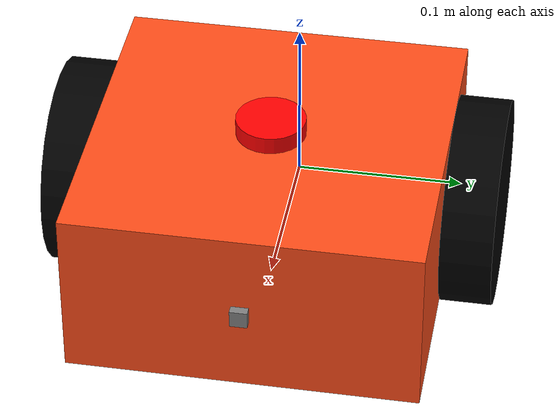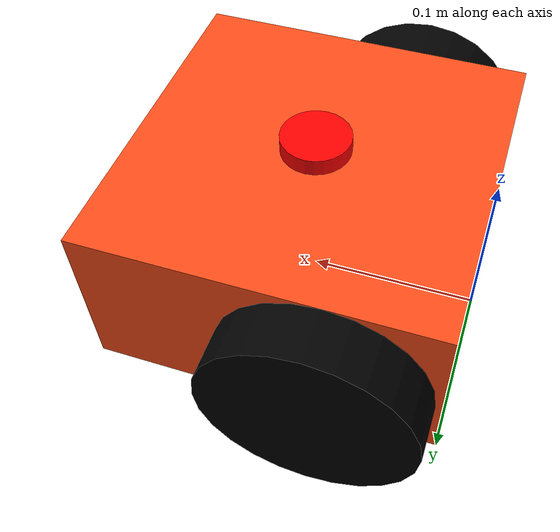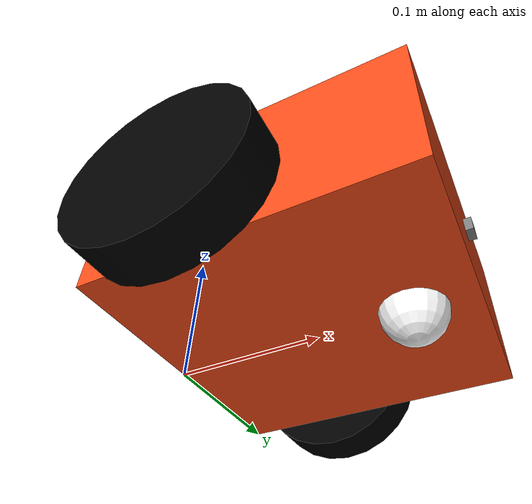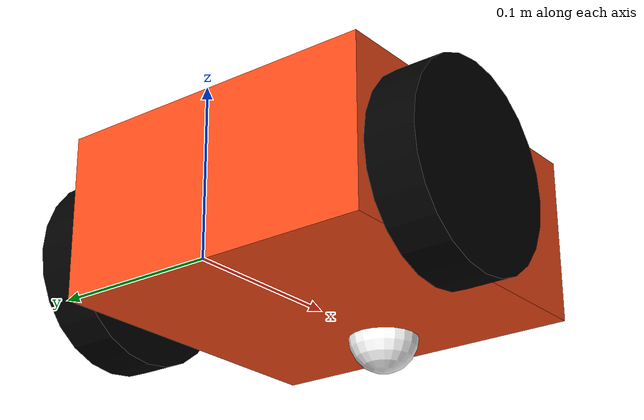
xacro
<?xml version="1.0"?>
<robot name="bumperbot" xmlns:xacro="http://ros.org/wiki/xacro">

    <!-- Include Gazebo Parameters -->
    <xacro:include filename="$(find bot_description)/urdf/bot_gazebo.xacro" />

    <!-- Include ros2_control Plugins -->
    <xacro:include filename="$(find bot_description)/urdf/bot_ros2_control.xacro" />

    <xacro:include filename="inertial_macros.xacro"/>

    <material name="white">
        <color rgba="1 1 1 1"/>
    </material>

    <material name="orange">
        <color rgba="1 0.3 0.1 1"/>
    </material>

    <material name="blue">
        <color rgba="0.2 0.2 1 1"/>
    </material>

    <material name="black">
        <color rgba="0 0 0 1"/>
    </material>

    <material name="grey">
        <color rgba="0.5 0.5 0.5 1" />
    </material>

    <material name="red">
        <color rgba="1 0 0 1"/>
    </material>

    <!-- base_footprint (projection of base_link on the ground) -->

    <link name="base_footprint"/>

    <link name="base_link">
        <visual>
            <origin xyz="0.0 0.0 0.0" rpy="0 0 0" />
            <geometry>
                <box size="0.2 0.2 0.1" />
            </geometry>
            <material name="orange"/>
        </visual>

        <collision>
            <origin rpy="0 0 0" xyz="0 0 0"/>
            <geometry>
                <box size="0.2 0.2 0.1" />
            </geometry>
        </collision>

        <xacro:inertial_box mass="0.5" x="0.3" y="0.3" z="0.15">
            <origin xyz="0.0 0.0 0.0" rpy="0 0 0"/>
        </xacro:inertial_box>

    </link>

    <joint name="base_joint" type="fixed">
        <parent link="base_footprint"/>
        <child link="base_link"/>
        <origin xyz="0.1 0.0 0.05" rpy="0 0 0"/>
    </joint>

    <link name="wheel_left_link">
        <visual>
            <origin xyz="0 0 0" rpy="-1.5708 0 0" />
            <geometry>
                <cylinder length="0.03" radius="0.06" />
            </geometry>
            <material name="black"/>
        </visual>

        <collision>
            <origin xyz="0 0.015 0" rpy="1.57 0 0"/>
            <geometry>
                <cylinder length="0.03" radius="0.06" />
            </geometry>
        </collision>

        <xacro:inertial_cylinder mass="0.1" length="0.03" radius="0.06">
            <origin xyz="0 0 0" rpy="0 0 0"/>
        </xacro:inertial_cylinder>
    </link>

    <joint name="wheel_left_joint" type="continuous">
        <origin xyz="-0.035 0.115 -0.01" rpy="0 0 0" />
        <parent link="base_link" />
        <child link="wheel_left_link" />
        <axis xyz="0 1 0" />
    </joint>

    <link name="wheel_right_link">
        <visual>
            <origin xyz="0 0 0" rpy="-1.5708 0 0" />
            <geometry>
                <cylinder length="0.03" radius="0.06" />
            </geometry>
            <material name="black"/>
        </visual>

        <collision>
            <origin xyz="0 0.015 0" rpy="1.57 0 0"/>
            <geometry>
                <cylinder length="0.03" radius="0.06" />
            </geometry>
        </collision>

        <xacro:inertial_cylinder mass="0.1" length="0.03" radius="0.06">
            <origin xyz="0 0 0" rpy="0 0 0"/>
        </xacro:inertial_cylinder>
    </link>

    <joint name="wheel_right_joint" type="continuous">
        <origin xyz="-0.035 -0.115 -0.01" rpy="0 0 0" />
        <parent link="base_link" />
        <child link="wheel_right_link" />
        <axis xyz="0 1 0" />
    </joint>

    <link name="caster_link">
        <visual>
            <origin xyz="0 0 0" rpy="0 0 0" />
            <geometry>
                <sphere radius="0.021" />
            </geometry>
            <material name="white"/>
        </visual>

        <collision>
            <origin xyz="0 0 0" rpy="0 0 0"/>
            <geometry>
                <sphere radius="0.021" />
            </geometry>
        </collision>

        <xacro:inertial_sphere mass="0.1" radius="0.021">
            <origin xyz="0 0 0" rpy="0 0 0"/>
        </xacro:inertial_sphere>
    </link>

    <joint name="caster_joint" type="fixed">
        <origin xyz="0.061 0.0 -0.05" rpy="0 0 0" />
        <parent link="base_link" />
        <child link="caster_link" />
        <axis xyz="0 0 0" />
    </joint>

    <link name="lidar_link">
        <visual>
            <origin xyz="0 0 0" rpy="0 0 0" />
            <geometry>
                <cylinder radius="0.02" length="0.01"/>
            </geometry>
            <material name="red"/>
        </visual>

        <collision>
            <origin xyz="0 0 0" rpy="0 0 0"/>
            <geometry>
                <cylinder radius="0.03" length="0.04"/>
            </geometry>
        </collision>

        <xacro:inertial_cylinder mass="0.1" length="0.01" radius="0.03">
            <origin xyz="0 0 0" rpy="0 0 0"/>
        </xacro:inertial_cylinder>
    </link>

    <joint name="lidar_joint" type="fixed">
        <origin xyz="0.0 0.0 0.055" rpy="0 0 0" />
        <parent link="base_link" />
        <child link="lidar_link" />
        <axis xyz="0 0 0" />
    </joint>

    <link name="camera_link">
        <visual>
            <origin xyz="0 0 0" rpy="0 0 0" />
            <geometry>
                <box size="0.01 0.01 0.01" />
            </geometry>
            <material name="grey"/>
        </visual>

        <collision>
            <origin xyz="0 0 0" rpy="0 0 0"/>
            <geometry>
                <box size="0.01 0.01 0.01" />
            </geometry>
        </collision>

    </link>

    <joint name="camera_joint" type="fixed">
        <origin xyz="0.1 0.0 0.0" rpy="0 0 0" />
        <parent link="base_link" />
        <child link="camera_link" />
        <axis xyz="0 0 0" />
    </joint>

</robot>
